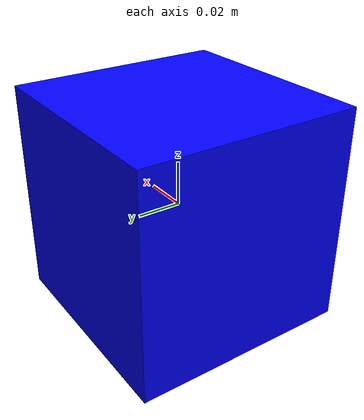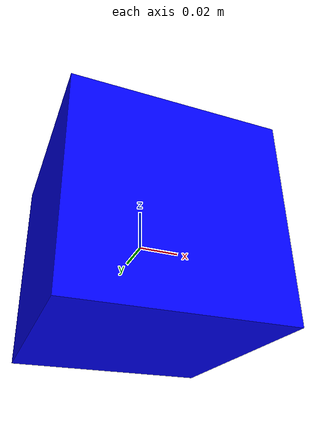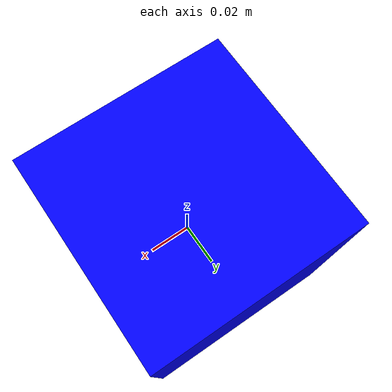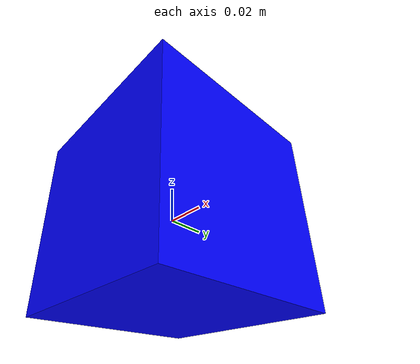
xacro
<?xml version="1.0"?>
<robot xmlns:xacro="http://www.ros.org/wiki/xacro" name="Bot_Arm">
    <xacro:include filename="$(find pick_and_place)/urdf/my_materials.urdf.xacro"/>
    <link name="base_link">
        <visual>
            <geometry>
                <box size="0.1 0.1 0.1"/>
            </geometry>
            <material name="blue"/>
        </visual>
    </link>
    <link name="link1">
        <visual>
            <geometry>
                <box size="0.1 0.1 0.1"/>
            </geometry>
            <material name="red"/>
        </visual>
    </link>
    <link name="link2">
        <visual>
            <geometry>
                <box size="0.1 0.1 0.1"/>
            </geometry>
            <material name="green"/>
        </visual>
    </link>

    <joint name="joint1" type="revolute">
        <origin xyz="0 0 0" rpy="0 0 0"/>
        <parent link="base_link"/>
        <child link="link1"/>
        <axis xyz="0 0 1"/>
        <limit lower="-3.14159" upper="3.14159"/>
    </joint>

    <joint name="joint2" type="revolute">
        <origin xyz="0 0 0" rpy="0 0 0"/>
        <parent link="link1"/>
        <child link="link2"/>
        <axis xyz="0 0 1"/>
        <limit lower="-3.14159" upper="3.14159"/>
    </joint>

</robot>

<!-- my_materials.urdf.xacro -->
<robot xmlns:xacro="http://www.ros.org/wiki/xacro">
    <material name="blue">
        <color rgba="0 0 1 1"/>
    </material>

    <material name="red">
        <color rgba="1 0 0 1"/>
    </material>

    <material name="green">
        <color rgba="0 1 0 1"/>
    </material>
</robot>
